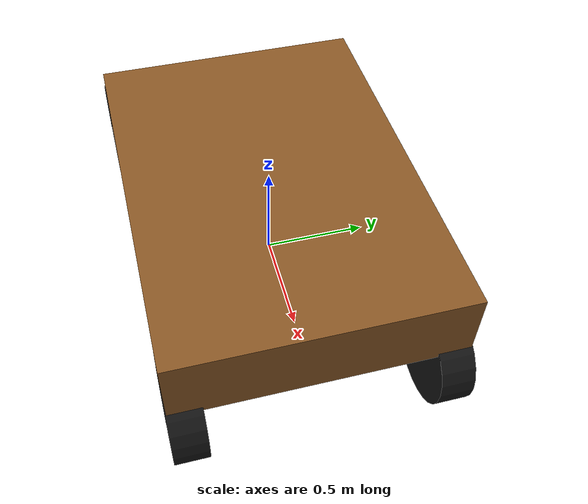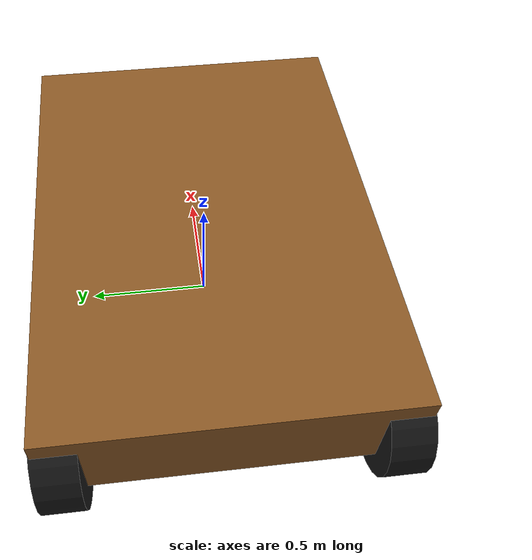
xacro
<?xml version="1.0"?>
<robot xmlns:xacro="http://www.ros.org/wiki/xacro" name="mars_rover">

  <!-- =========================
       Basic rover dimensions
       ========================= -->
  <xacro:property name="wheel_radius" value="0.25"/>
  <xacro:property name="wheel_width" value="0.16"/>
  <xacro:property name="wheelbase" value="1.60"/>
  <xacro:property name="track" value="1.20"/>
  <xacro:property name="body_length" value="1.90"/>
  <xacro:property name="body_width" value="1.35"/>
  <xacro:property name="body_height" value="0.35"/>

  <!-- =========================
       Materials
       ========================= -->
  <material name="rover_body_material">
    <color rgba="0.55 0.35 0.15 1.0"/>
  </material>

  <material name="wheel_material">
    <color rgba="0.08 0.08 0.08 1.0"/>
  </material>

  <material name="metal_material">
    <color rgba="0.55 0.55 0.55 1.0"/>
  </material>

  <!-- =========================
       Base
       ========================= -->
  <link name="base_link">
    <visual>
      <origin xyz="0 0 0.35"/>
      <geometry>
        <box size="${body_length} ${body_width} ${body_height}"/>
      </geometry>
      <material name="rover_body_material"/>
    </visual>

    <collision>
      <origin xyz="0 0 0.35"/>
      <geometry>
        <box size="${body_length} ${body_width} ${body_height}"/>
      </geometry>
    </collision>

    <inertial>
      <origin xyz="0 0 0.35"/>
      <mass value="30.0"/>
      <inertia ixx="8.0" ixy="0.0" ixz="0.0"
               iyy="10.0" iyz="0.0"
               izz="12.0"/>
    </inertial>
  </link>

  <!-- =========================
       Wheel macro
       ========================= -->
  <xacro:macro name="wheel_link" params="name">
    <link name="${name}">
      <visual>
        <origin xyz="0 0 0" rpy="1.5708 0 0"/>
        <geometry>
          <cylinder radius="${wheel_radius}" length="${wheel_width}"/>
        </geometry>
        <material name="wheel_material"/>
      </visual>

      <collision>
        <origin xyz="0 0 0" rpy="1.5708 0 0"/>
        <geometry>
          <cylinder radius="${wheel_radius}" length="${wheel_width}"/>
        </geometry>
      </collision>

      <inertial>
        <mass value="2.0"/>
        <inertia ixx="0.05" ixy="0" ixz="0"
                 iyy="0.05" iyz="0"
                 izz="0.05"/>
      </inertial>
    </link>
  </xacro:macro>

  <!-- =========================
       Steering knuckle macro
       ========================= -->
  <xacro:macro name="steering_link" params="name">
    <link name="${name}">
      <visual>
        <geometry>
          <box size="0.12 0.12 0.20"/>
        </geometry>
        <material name="metal_material"/>
      </visual>

      <collision>
        <geometry>
          <box size="0.12 0.12 0.20"/>
        </geometry>
      </collision>

      <inertial>
        <mass value="0.5"/>
        <inertia ixx="0.001" ixy="0" ixz="0"
                 iyy="0.001" iyz="0"
                 izz="0.001"/>
      </inertial>
    </link>
  </xacro:macro>

  <!-- =========================
       Front steering assemblies
       ========================= -->
  <xacro:steering_link name="front_left_steering_link"/>
  <xacro:steering_link name="front_right_steering_link"/>

  <joint name="front_left_steering_joint" type="revolute">
    <parent link="base_link"/>
    <child link="front_left_steering_link"/>
    <origin xyz="${wheelbase/2} ${track/2} ${wheel_radius}" rpy="0 0 0"/>
    <axis xyz="0 0 1"/>
    <limit lower="-0.65" upper="0.65" effort="50" velocity="1.5"/>
  </joint>

  <joint name="front_right_steering_joint" type="revolute">
    <parent link="base_link"/>
    <child link="front_right_steering_link"/>
    <origin xyz="${wheelbase/2} ${-track/2} ${wheel_radius}" rpy="0 0 0"/>
    <axis xyz="0 0 1"/>
    <limit lower="-0.65" upper="0.65" effort="50" velocity="1.5"/>
  </joint>

  <!-- =========================
       Wheels
       ========================= -->
  <xacro:wheel_link name="front_left_wheel"/>
  <xacro:wheel_link name="front_right_wheel"/>
  <xacro:wheel_link name="rear_left_wheel"/>
  <xacro:wheel_link name="rear_right_wheel"/>

  <joint name="front_left_wheel_joint" type="continuous">
    <parent link="front_left_steering_link"/>
    <child link="front_left_wheel"/>
    <origin xyz="0 0 -${wheel_radius}"/>
    <axis xyz="0 1 0"/>
  </joint>

  <joint name="front_right_wheel_joint" type="continuous">
    <parent link="front_right_steering_link"/>
    <child link="front_right_wheel"/>
    <origin xyz="0 0 -${wheel_radius}"/>
    <axis xyz="0 1 0"/>
  </joint>

  <joint name="rear_left_wheel_joint" type="continuous">
    <parent link="base_link"/>
    <child link="rear_left_wheel"/>
    <origin xyz="-${wheelbase/2} ${track/2} ${wheel_radius}"/>
    <axis xyz="0 1 0"/>
  </joint>

  <joint name="rear_right_wheel_joint" type="continuous">
    <parent link="base_link"/>
    <child link="rear_right_wheel"/>
    <origin xyz="-${wheelbase/2} ${-track/2} ${wheel_radius}"/>
    <axis xyz="0 1 0"/>
  </joint>

  <!-- =========================
       ros2_control
       ========================= -->
  <ros2_control name="GazeboSystem" type="system">
    <hardware>
      <plugin>gazebo_ros2_control/GazeboSystem</plugin>
    </hardware>

    <joint name="front_left_steering_joint">
      <command_interface name="position"/>
      <state_interface name="position"/>
      <state_interface name="velocity"/>
    </joint>

    <joint name="front_right_steering_joint">
      <command_interface name="position"/>
      <state_interface name="position"/>
      <state_interface name="velocity"/>
    </joint>

    <joint name="rear_left_wheel_joint">
      <command_interface name="velocity"/>
      <state_interface name="position"/>
      <state_interface name="velocity"/>
    </joint>

    <joint name="rear_right_wheel_joint">
      <command_interface name="velocity"/>
      <state_interface name="position"/>
      <state_interface name="velocity"/>
    </joint>
  </ros2_control>

  <!-- Gazebo ROS 2 control plugin -->
  <gazebo>
    <plugin name="gazebo_ros2_control" filename="libgazebo_ros2_control.so">
      <parameters>$(find mars_rover_ackermann)/config/controllers.yaml</parameters>
    </plugin>
  </gazebo>

  <!-- Wheel friction -->
  <gazebo reference="front_left_wheel">
    <mu1>1.5</mu1>
    <mu2>1.5</mu2>
  </gazebo>

  <gazebo reference="front_right_wheel">
    <mu1>1.5</mu1>
    <mu2>1.5</mu2>
  </gazebo>

  <gazebo reference="rear_left_wheel">
    <mu1>1.5</mu1>
    <mu2>1.5</mu2>
  </gazebo>

  <gazebo reference="rear_right_wheel">
    <mu1>1.5</mu1>
    <mu2>1.5</mu2>
  </gazebo>

</robot>
